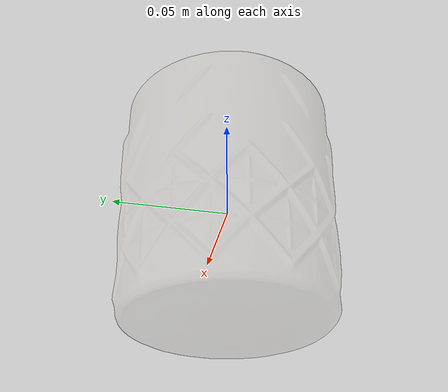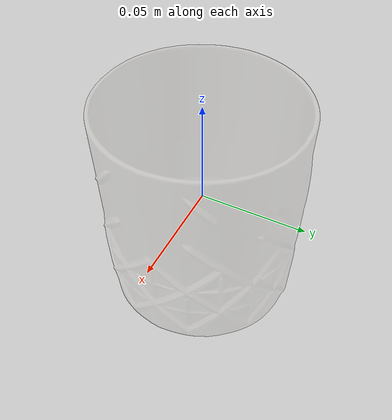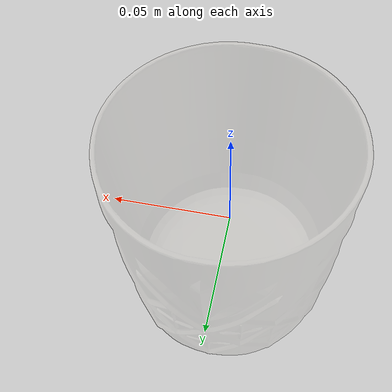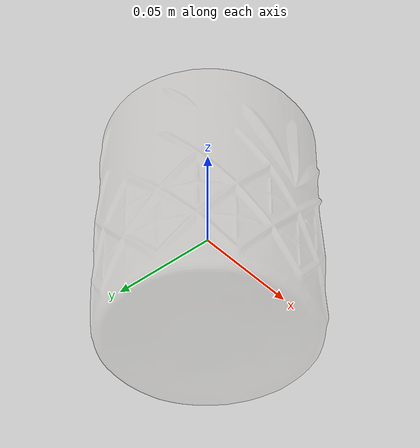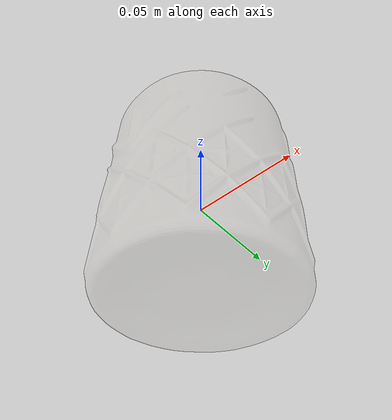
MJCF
<mujoco model="model">
  <option timestep="0.002" gravity="0.0 0.0 -9.81"/>
  <compiler angle="radian"/>
  <asset>
    <mesh file="visual/Clear.obj" name="GlassCup019_Clear_vis"/>
    <texture file="visual/T_BC001.png" name="GlassCup019_Clear_material" type="2d"/>
    <material name="GlassCup019_Clear_material" rgba="1 1 1 0.20000000298023224" texture="GlassCup019_Clear_material" shininess="0.5180797278881073" specular="0.3103448502657381"/>
    <mesh file="collision/collision_mesh_collision_0.obj" name="GlassCup019_collision_mesh_0"/>
    <mesh file="collision/collision_mesh_collision_1.obj" name="GlassCup019_collision_mesh_1"/>
    <mesh file="collision/collision_mesh_collision_2.obj" name="GlassCup019_collision_mesh_2"/>
    <mesh file="collision/collision_mesh_collision_3.obj" name="GlassCup019_collision_mesh_3"/>
    <mesh file="collision/collision_mesh_collision_4.obj" name="GlassCup019_collision_mesh_4"/>
    <mesh file="collision/collision_mesh_collision_5.obj" name="GlassCup019_collision_mesh_5"/>
    <mesh file="collision/collision_mesh_collision_6.obj" name="GlassCup019_collision_mesh_6"/>
    <mesh file="collision/collision_mesh_collision_7.obj" name="GlassCup019_collision_mesh_7"/>
    <mesh file="collision/collision_mesh_collision_8.obj" name="GlassCup019_collision_mesh_8"/>
    <mesh file="collision/collision_mesh_collision_9.obj" name="GlassCup019_collision_mesh_9"/>
    <mesh file="collision/collision_mesh_collision_10.obj" name="GlassCup019_collision_mesh_10"/>
    <mesh file="collision/collision_mesh_collision_11.obj" name="GlassCup019_collision_mesh_11"/>
    <mesh file="collision/collision_mesh_collision_12.obj" name="GlassCup019_collision_mesh_12"/>
    <mesh file="collision/collision_mesh_collision_13.obj" name="GlassCup019_collision_mesh_13"/>
    <mesh file="collision/collision_mesh_collision_14.obj" name="GlassCup019_collision_mesh_14"/>
    <mesh file="collision/collision_mesh_collision_15.obj" name="GlassCup019_collision_mesh_15"/>
  </asset>
  <default>
    <default class="visual">
      <geom conaffinity="0" contype="0" group="1" type="mesh"/>
    </default>
    <default class="collision">
      <geom group="3" rgba="0.5 0 0 0.5" density="1000.0"/>
    </default>
    <default class="spawn">
      <geom group="0" rgba="1 1 1 0.5" contype="0" conaffinity="0"/>
      <site group="0" rgba="1 1 1 0.5"/>
    </default>
    <default class="region">
      <geom group="1" conaffinity="0" contype="0" rgba="0 1 0 0" mass="0"/>
    </default>
  </default>
  <worldbody>
    <body>
      <body name="object">
        <geom mesh="GlassCup019_Clear_vis" type="mesh" solimp="0.998 0.998 0.001" solref="0.001 1" friction="0.95 0.3 0.1" class="visual" material="GlassCup019_Clear_material"/>
        <geom mesh="GlassCup019_collision_mesh_0" type="mesh" class="collision"/>
        <geom mesh="GlassCup019_collision_mesh_1" type="mesh" class="collision"/>
        <geom mesh="GlassCup019_collision_mesh_2" type="mesh" class="collision"/>
        <geom mesh="GlassCup019_collision_mesh_3" type="mesh" class="collision"/>
        <geom mesh="GlassCup019_collision_mesh_4" type="mesh" class="collision"/>
        <geom mesh="GlassCup019_collision_mesh_5" type="mesh" class="collision"/>
        <geom mesh="GlassCup019_collision_mesh_6" type="mesh" class="collision"/>
        <geom mesh="GlassCup019_collision_mesh_7" type="mesh" class="collision"/>
        <geom mesh="GlassCup019_collision_mesh_8" type="mesh" class="collision"/>
        <geom mesh="GlassCup019_collision_mesh_9" type="mesh" class="collision"/>
        <geom mesh="GlassCup019_collision_mesh_10" type="mesh" class="collision"/>
        <geom mesh="GlassCup019_collision_mesh_11" type="mesh" class="collision"/>
        <geom mesh="GlassCup019_collision_mesh_12" type="mesh" class="collision"/>
        <geom mesh="GlassCup019_collision_mesh_13" type="mesh" class="collision"/>
        <geom mesh="GlassCup019_collision_mesh_14" type="mesh" class="collision"/>
        <geom mesh="GlassCup019_collision_mesh_15" type="mesh" class="collision"/>
        <geom class="region" name="reg_bbox" type="box" pos="-4.170000000001256e-06 4.560000000000675e-06 -1.5549999999999592e-05" size="0.047637979999999996 0.04883998 0.052464479999999994"/>
        <geom class="region" name="liquid" type="cylinder" rgba="0 0 0 0" size="0.042 0.0275" pos="0.000002 0.000000 -0.0075"/>
        <geom class="region" name="reg_int" type="cylinder" rgba="0 0 0 0" size="0.036 0.05" pos="0.000002 0.000000 0.0115"/>
      </body>
    </body>
  </worldbody>
  <actuator/>
</mujoco>
